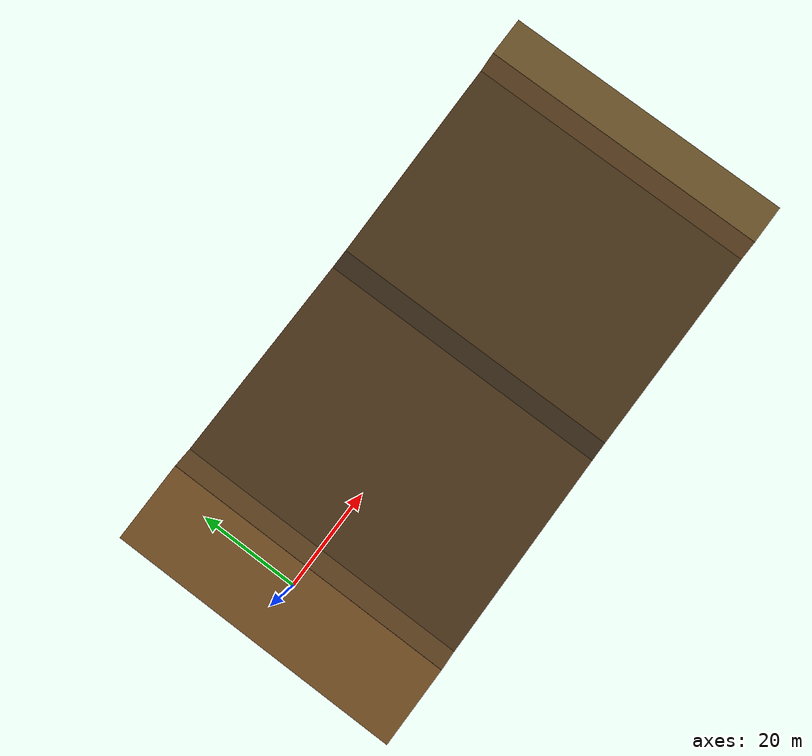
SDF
<?xml version="1.0" ?>
<sdf version="1.10">
  <model name="terrain_demo">
    <static>true</static>

    <link name="demo_ground_link">
      <collision name="home_plateau_collision">
        <pose>-4 0 -0.10 0 0 0</pose>
        <geometry><box><size>16 60 0.20</size></box></geometry>
        <surface><friction><ode><mu>0.8</mu><mu2>0.8</mu2></ode></friction></surface>
      </collision>
      <collision name="home_slope_15deg_collision">
        <pose>5.8660 0 -0.5966 0 0.261799 0</pose>
        <geometry><box><size>3.8637 60 0.20</size></box></geometry>
        <surface><friction><ode><mu>0.65</mu><mu2>0.65</mu2></ode></friction></surface>
      </collision>
      <collision name="lower_home_slope_collision">
        <pose>28.8660 0 -2.0999 0 0.047282 0</pose>
        <geometry><box><size>42.3152 60 0.20</size></box></geometry>
        <surface><friction><ode><mu>0.5</mu><mu2>0.5</mu2></ode></friction></surface>
      </collision>
      <collision name="centre_floor_collision">
        <pose>52 0 -3.10 0 0 0</pose>
        <geometry><box><size>4 60 0.20</size></box></geometry>
        <surface><friction><ode><mu>0.45</mu><mu2>0.45</mu2></ode></friction></surface>
      </collision>
      <collision name="lower_delivery_slope_collision">
        <pose>75.1340 0 -2.0999 0 -0.047282 0</pose>
        <geometry><box><size>42.3152 60 0.20</size></box></geometry>
        <surface><friction><ode><mu>0.5</mu><mu2>0.5</mu2></ode></friction></surface>
      </collision>
      <collision name="delivery_slope_15deg_collision">
        <pose>98.1340 0 -0.5966 0 -0.261799 0</pose>
        <geometry><box><size>3.8637 60 0.20</size></box></geometry>
        <surface><friction><ode><mu>0.65</mu><mu2>0.65</mu2></ode></friction></surface>
      </collision>
      <collision name="delivery_plateau_collision">
        <pose>104 0 -0.10 0 0 0</pose>
        <geometry><box><size>8 60 0.20</size></box></geometry>
        <surface><friction><ode><mu>0.8</mu><mu2>0.8</mu2></ode></friction></surface>
      </collision>
    </link>
    <link name="terrain_visual_link">
      <visual name="home_plateau_visual"><pose>-4 0 -0.10 0 0 0</pose><geometry><box><size>16 60 0.20</size></box></geometry><material><ambient>0.24 0.16 0.08 1</ambient><diffuse>0.42 0.28 0.12 1</diffuse></material></visual>
      <visual name="home_slope_15deg_visual"><pose>5.8660 0 -0.5966 0 0.261799 0</pose><geometry><box><size>3.8637 60 0.20</size></box></geometry><material><ambient>0.19 0.13 0.06 1</ambient><diffuse>0.34 0.23 0.11 1</diffuse></material></visual>
      <visual name="lower_home_slope_visual"><pose>28.8660 0 -2.0999 0 0.047282 0</pose><geometry><box><size>42.3152 60 0.20</size></box></geometry><material><ambient>0.14 0.10 0.05 1</ambient><diffuse>0.27 0.19 0.09 1</diffuse></material></visual>
      <visual name="centre_floor_visual"><pose>52 0 -3.10 0 0 0</pose><geometry><box><size>4 60 0.20</size></box></geometry><material><ambient>0.10 0.08 0.04 1</ambient><diffuse>0.20 0.15 0.08 1</diffuse></material></visual>
      <visual name="lower_delivery_slope_visual"><pose>75.1340 0 -2.0999 0 -0.047282 0</pose><geometry><box><size>42.3152 60 0.20</size></box></geometry><material><ambient>0.14 0.10 0.05 1</ambient><diffuse>0.27 0.19 0.09 1</diffuse></material></visual>
      <visual name="delivery_slope_15deg_visual"><pose>98.1340 0 -0.5966 0 -0.261799 0</pose><geometry><box><size>3.8637 60 0.20</size></box></geometry><material><ambient>0.19 0.13 0.06 1</ambient><diffuse>0.34 0.23 0.11 1</diffuse></material></visual>
      <visual name="delivery_plateau_visual"><pose>104 0 -0.10 0 0 0</pose><geometry><box><size>8 60 0.20</size></box></geometry><material><ambient>0.22 0.16 0.07 1</ambient><diffuse>0.40 0.31 0.15 1</diffuse></material></visual>
    </link>
  </model>
</sdf>
